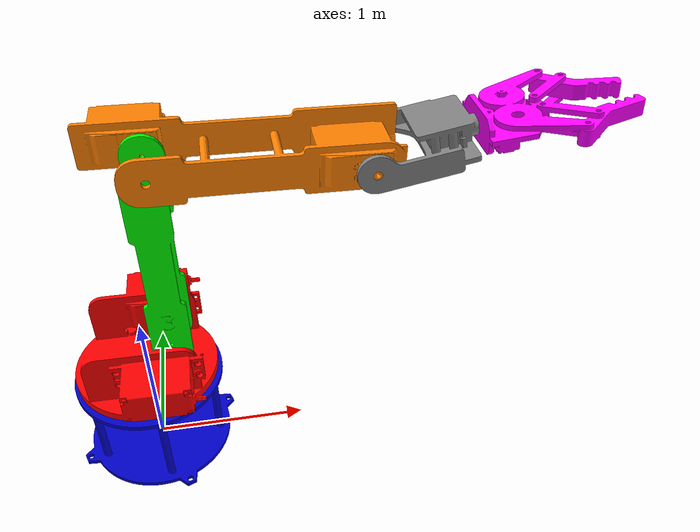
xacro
<?xml version="1.0"?>
<robot name="arm1" xmlns:xacro="http://www.ros.org/wiki/xacro">
  <!-- Definición de materiales -->
  <xacro:macro name="define_material" params="name color">
    <material name="${name}">
      <color rgba="${color}"/>
    </material>
  </xacro:macro>

  <xacro:define_material name="blue" color="0 0 0.8 1"/>
  <xacro:define_material name="white" color="1 1 1 1"/>
  <xacro:define_material name="red" color="1 0 0 1"/>
  <xacro:define_material name="green" color="0 1 0 1"/>
  <xacro:define_material name="yellow" color="1 1 0 1"/>
  <xacro:define_material name="cyan" color="0 1 1 1"/>
  <xacro:define_material name="magenta" color="1 0 1 1"/>
  <xacro:define_material name="orange" color="1 0.5 0 1"/>
  <xacro:define_material name="purple" color="0.5 0 0.5 1"/>
  <xacro:define_material name="gray" color="0.5 0.5 0.5 1"/>
  <xacro:define_material name="light_blue" color="0.678 0.847 0.902 1"/>
  <xacro:define_material name="dark_green" color="0 0.5 0 1"/>

  <link name="world"/>

  <!-- Macro para definir un enlace con visual y colisión -->
  <xacro:macro name="define_link" params="name visual_file collision_file material_name">
    <link name="${name}">
      <visual>
        <geometry>
          <mesh filename="${visual_file}"/>
        </geometry>
        <material name="${material_name}"/>
      </visual>
      <collision>
        <geometry>
          <mesh filename="${collision_file}"/>
        </geometry>
      </collision>
    </link>
  </xacro:macro>

  <!-- Definición de enlaces -->
  <xacro:define_link name="part1" visual_file="package://siro_arm/meshes/visual/Ensamble_1.stl" collision_file="package://siro_arm/meshes/collision/Ensamble_1.dae" material_name="blue"/>
  <xacro:define_link name="part2" visual_file="package://siro_arm/meshes/visual/Ensamble_2.stl" collision_file="package://siro_arm/meshes/collision/Ensamble_2.dae" material_name="red"/>
  <xacro:define_link name="part3" visual_file="package://siro_arm/meshes/visual/Ensamble_3.stl" collision_file="package://siro_arm/meshes/collision/Ensamble_3.dae" material_name="green"/>
  <xacro:define_link name="part4" visual_file="package://siro_arm/meshes/visual/Ensamble_4.stl" collision_file="package://siro_arm/meshes/collision/Ensamble_4.dae" material_name="orange"/>
  <xacro:define_link name="part5" visual_file="package://siro_arm/meshes/visual/Ensamble_5.stl" collision_file="package://siro_arm/meshes/collision/Ensamble_5.dae" material_name="gray"/>
  <xacro:define_link name="part6" visual_file="package://siro_arm/meshes/visual/Ensamble_6.stl" collision_file="package://siro_arm/meshes/collision/Ensamble_6.dae" material_name="magenta"/>

  <!-- Macro para definir uniones -->
  <xacro:macro name="define_joint" params="name type parent child origin_xyz origin_rpy axis lower upper effort velocity">
    <joint name="${name}" type="${type}">
      <parent link="${parent}"/>
      <child link="${child}"/>
      <origin xyz="${origin_xyz}" rpy="${origin_rpy}"/>
      <axis xyz="${axis}"/>
      <limit lower="${lower}" upper="${upper}" effort="${effort}" velocity="${velocity}"/>
    </joint>
  </xacro:macro>

  <!-- Definición de uniones -->
  <xacro:define_joint name="fixed_joint" type="fixed" parent="world" child="part1" origin_xyz="0 0 0" origin_rpy="0 0 0" axis="0 0 1" lower="0" upper="0" effort="0" velocity="0"/>
  <xacro:define_joint name="joint_1" type="revolute" parent="part1" child="part2" origin_xyz="0 0 0.6367" origin_rpy="0 0 0" axis="0 0 1" lower="-1.57" upper="1.57" effort="10" velocity="1.0"/>
  <xacro:define_joint name="joint_2" type="revolute" parent="part2" child="part3" origin_xyz="0.194649 0.152205 0.247295" origin_rpy="0 0 0" axis="0 1 0" lower="-1.57" upper="1.57" effort="10" velocity="1.0"/>
  <xacro:define_joint name="joint_3" type="revolute" parent="part3" child="part4" origin_xyz="0 0 1.23" origin_rpy="0 0 0" axis="0 1 0" lower="-1.57" upper="1.57" effort="10" velocity="1.0"/>
  <xacro:define_joint name="joint_4" type="revolute" parent="part4" child="part5" origin_xyz="1.2196 -0.401701 -0.009168" origin_rpy="0 0 0" axis="0 1 0" lower="-1.57" upper="1.57" effort="10" velocity="1.0"/>
  <xacro:define_joint name="joint_5" type="revolute" parent="part5" child="part6" origin_xyz="0.606218 0.228952 0.118208" origin_rpy="0 -0.10853 0" axis="1 0 0" lower="-1.57" upper="1.57" effort="10" velocity="1.0"/>
</robot>
